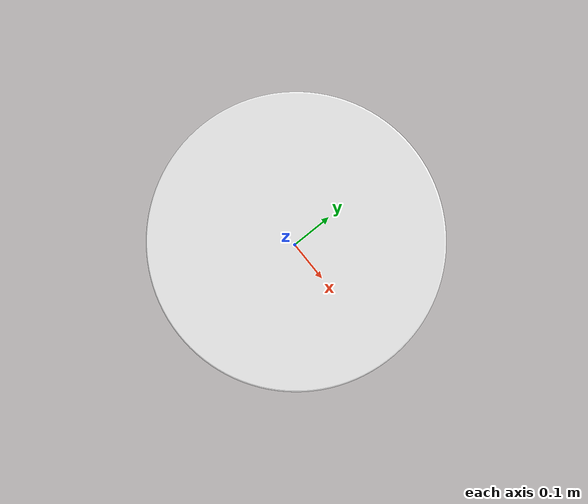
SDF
<?xml version="1.0" ?>
<sdf version="1.6">

  <!-- Model -->
  <model name="mesa">
    <pose>0 0 0 0 0 0</pose>
    <static>true</static>

    <!-- Link -->
    <link name="link">
      <visual name="visual">
        <geometry>
          <mesh>
            <scale>1 1 1</scale>
            <uri>model://mesa/meshes/mesa.dae</uri>
          </mesh>
        </geometry>
        <material>
          <script>
            <uri>model://mesa/materials/textures</uri>
            <uri>model://mesa/materials/scripts</uri>
            <name>MesaTexture</name>
          </script>
          <ambient>1 1 1 1</ambient>
          <diffuse>1 1 1 1</diffuse>
          <specular>1 1 1 1</specular>
          <emissive>0 0 0 1</emissive>
        </material>
      </visual>

    </link>

  </model>
</sdf>
